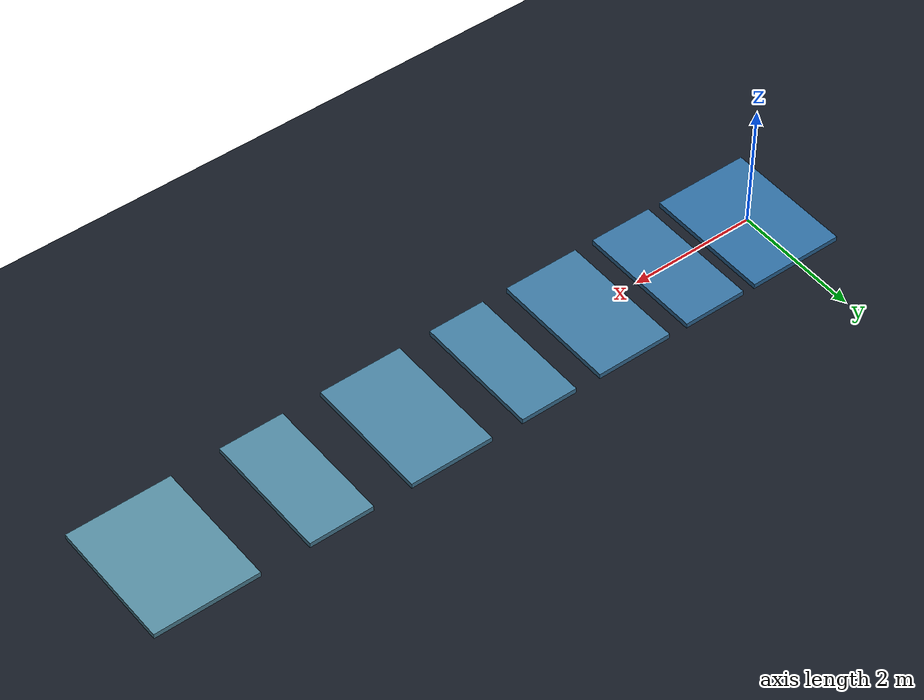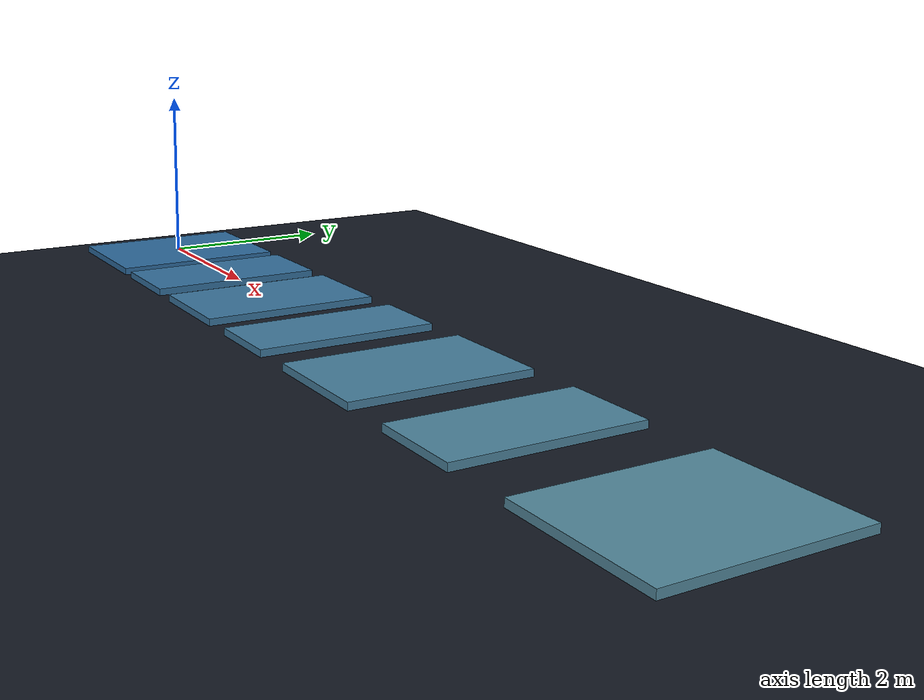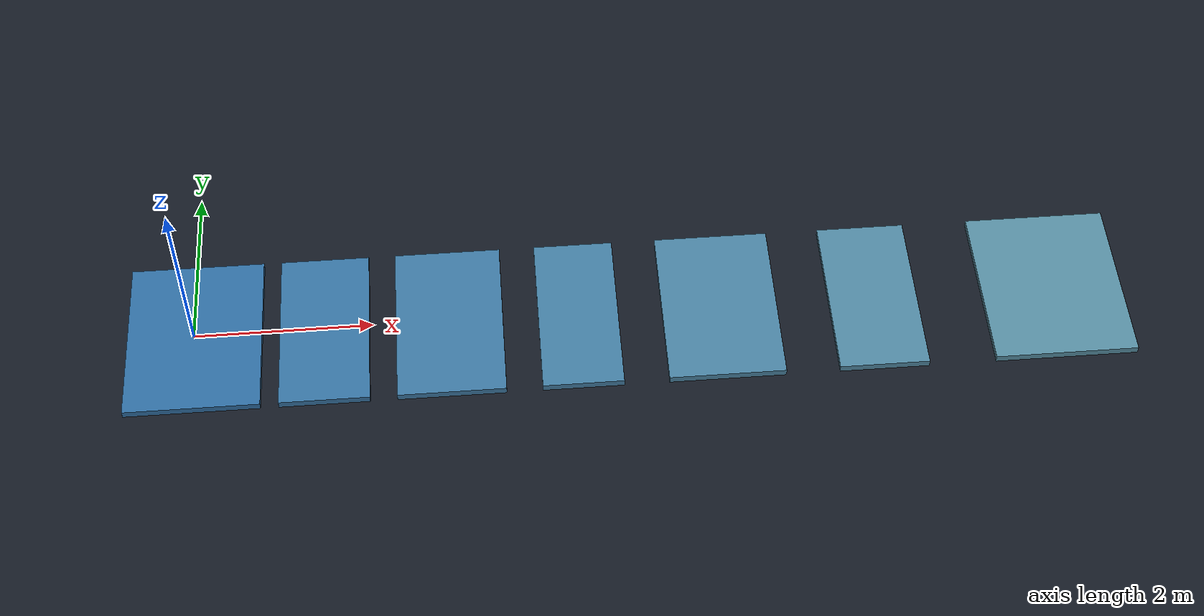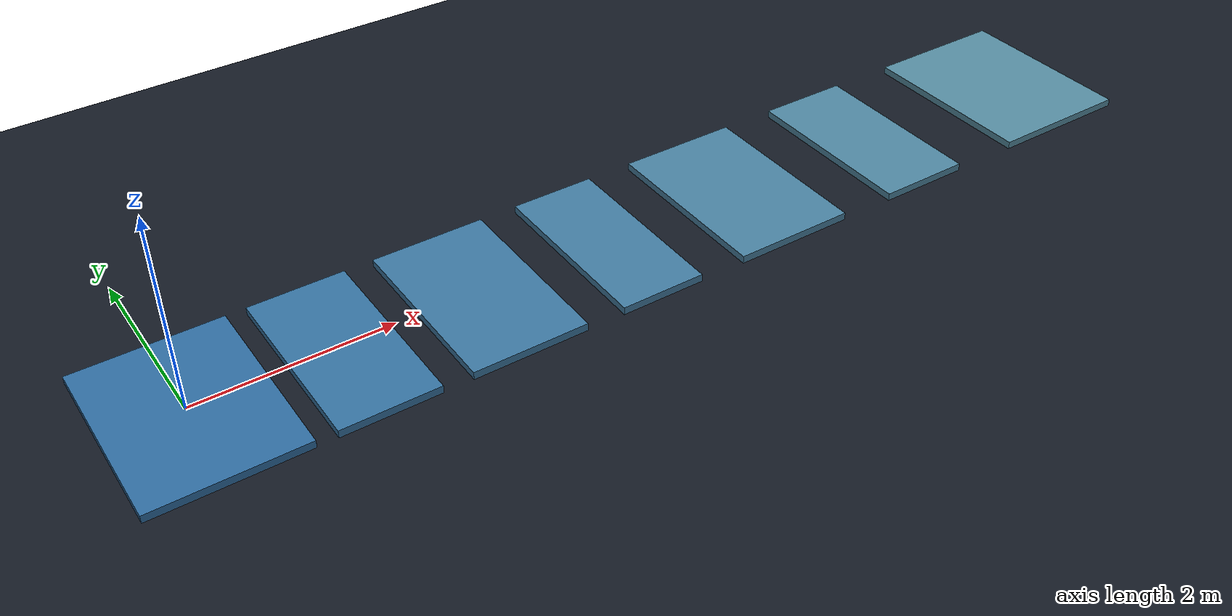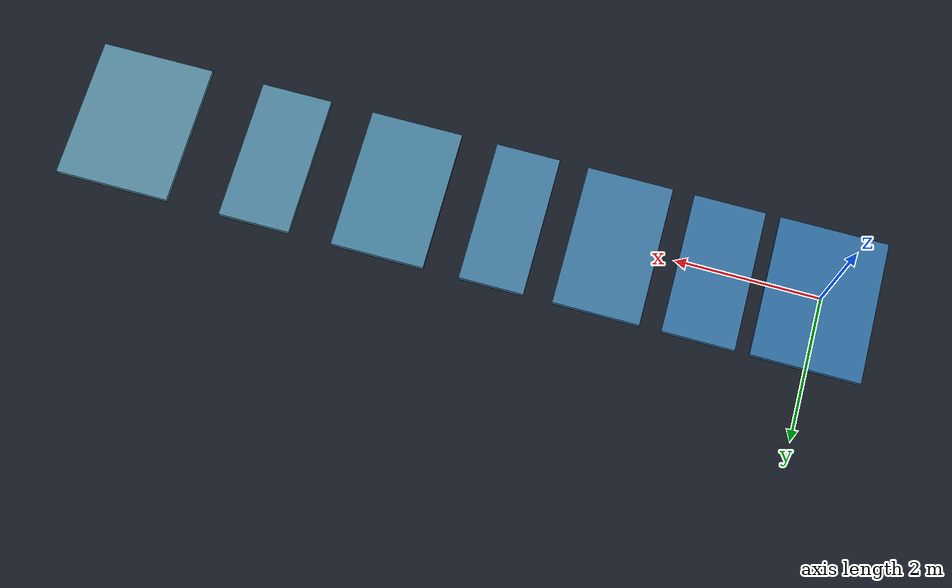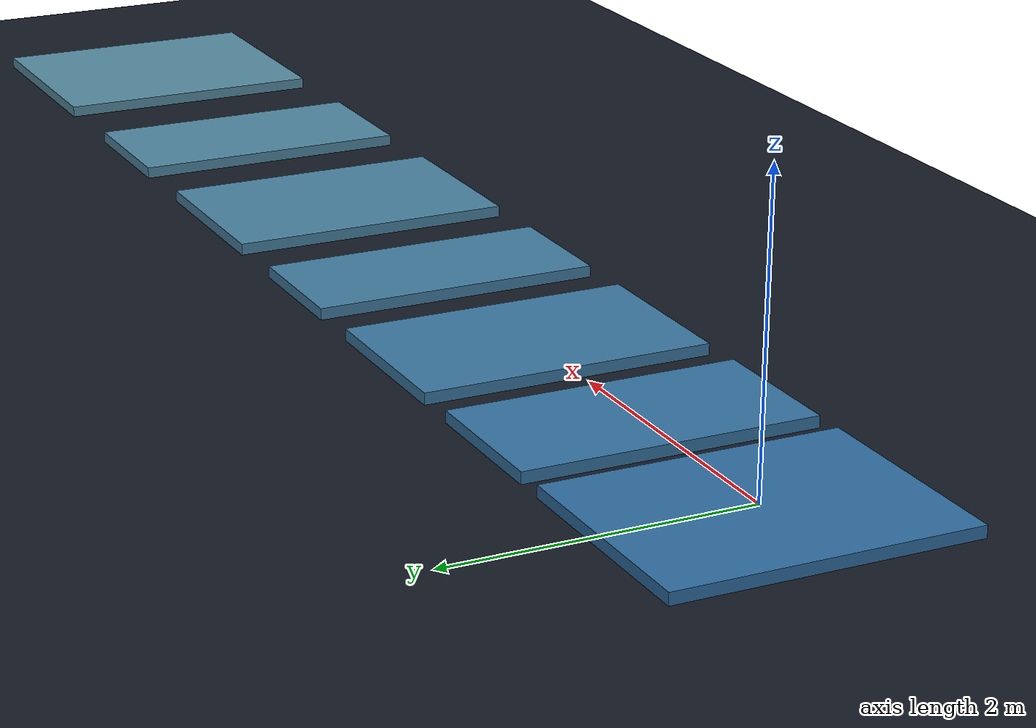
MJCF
<?xml version='1.0' encoding='utf-8'?>
<mujoco model="gap jump course"><asset><texture type="2d" name="groundplane" builtin="checker" mark="edge" rgb1="0.18 0.24 0.30" rgb2="0.08 0.12 0.16" markrgb="0.7 0.7 0.7" width="300" height="300" /><material name="groundplane" texture="groundplane" texuniform="true" texrepeat="8 8" reflectance="0.05" /></asset><worldbody><geom name="safety_floor" type="plane" pos="0 0 -1.2" size="0 0 0.05" rgba="0.08 0.10 0.14 1" /><geom name="platform_0" type="box" pos="0 0 -0.04" size="0.75 1 0.04" rgba="0.180 0.420 0.62 1" /><geom name="platform_1" type="box" pos="1.45 0 -0.04" size="0.5 1 0.04" rgba="0.205 0.440 0.62 1" /><geom name="platform_2" type="box" pos="2.85 0 -0.04" size="0.6 1 0.04" rgba="0.230 0.460 0.62 1" /><geom name="platform_3" type="box" pos="4.3 0 -0.04" size="0.45 1 0.04" rgba="0.255 0.480 0.62 1" /><geom name="platform_4" type="box" pos="5.9 0 -0.04" size="0.65 1 0.04" rgba="0.280 0.500 0.62 1" /><geom name="platform_5" type="box" pos="7.65 0 -0.04" size="0.5 1 0.04" rgba="0.305 0.520 0.62 1" /><geom name="platform_6" type="box" pos="9.7 0 -0.04" size="0.8 1 0.04" rgba="0.330 0.540 0.62 1" /></worldbody></mujoco>
